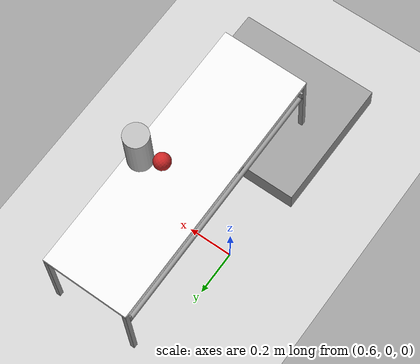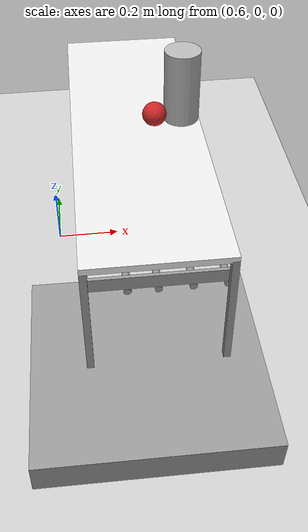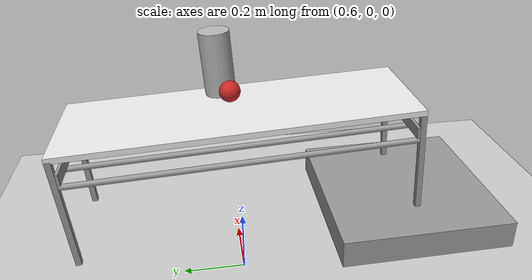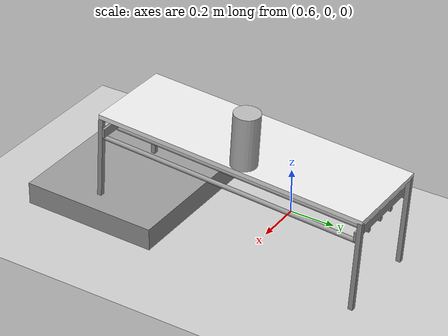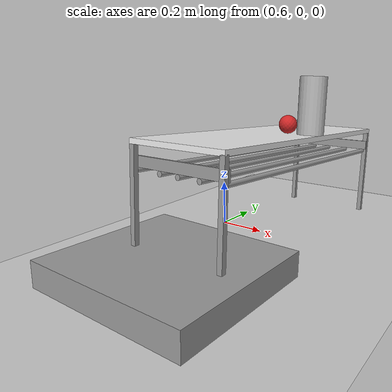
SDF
<sdf version="1.7">
 <world name="default">
  <physics name="default_physics" default="0" type="ode">
   <max_step_size>0.001</max_step_size>
   <real_time_factor>1</real_time_factor>
   <real_time_update_rate>1000</real_time_update_rate>
  </physics>
  <light name="sun" type="directional">
   <pose>0 0 10 0 -0 0</pose>
   <diffuse>0.8 0.8 0.8 1</diffuse>
   <specular>0.2 0.2 0.2 1</specular>
   <attenuation><range>1000</range><constant>1</constant><linear>0</linear><quadratic>0</quadratic></attenuation>
   <direction>-0.5 0.1 -0.9</direction>
   <spot><inner_angle>0</inner_angle><outer_angle>0</outer_angle><falloff>0</falloff></spot>
  </light>
  <model name="ground_plane">
   <static>1</static>
   <link name="link">
    <collision name="collision">
     <geometry><plane><normal>0 0 1</normal><size>100 100</size></plane></geometry>
     <surface>
      <contact><collide_bitmask>65535</collide_bitmask></contact>
      <friction><ode><mu>100</mu><mu2>50</mu2></ode></friction>
     </surface>
    </collision>
    <visual name="visual">
     <cast_shadows>0</cast_shadows>
     <geometry><plane><normal>0 0 1</normal><size>100 100</size></plane></geometry>
     <material>
      <script><uri>file://media/materials/scripts/gazebo.material</uri><name>Gazebo/Grey</name></script>
     </material>
    </visual>
   </link>
  </model>
  <gravity>0 0 -9.8</gravity>
  <magnetic_field>6e-06 2.3e-05 -4.2e-05</magnetic_field>
  <atmosphere type="adiabatic"/>
  <scene><ambient>0.4 0.4 0.4 1</ambient><background>0.7 0.7 0.7 1</background><shadows>1</shadows></scene>
  <spherical_coordinates>
   <surface_model>EARTH_WGS84</surface_model>
   <latitude_deg>0</latitude_deg>
   <longitude_deg>0</longitude_deg>
   <elevation>0</elevation>
   <heading_deg>0</heading_deg>
  </spherical_coordinates>
  <model name="wrc_long_table">
   <static>1</static>
   <link name="link">
    <inertial><mass>1</mass></inertial>
    <collision name="top">
     <pose>0 0 0.39 0 -0 0</pose>
     <geometry><box><size>1.2 0.4 0.02</size></box></geometry>
    </collision>
    <visual name="top_v">
     <pose>0 0 0.39 0 -0 0</pose>
     <geometry><box><size>1.2 0.4 0.02</size></box></geometry>
     <material>
      <script><uri>file://media/materials/scripts/gazebo.material</uri><name>Gazebo/White</name></script>
     </material>
    </visual>
    <collision name="leg1">
     <pose>0.59 0.19 0.185 0 -0 0</pose>
     <geometry><box><size>0.02 0.02 0.4</size></box></geometry>
    </collision>
    <visual name="leg1_v">
     <pose>0.59 0.19 0.185 0 -0 0</pose>
     <geometry><box><size>0.02 0.02 0.4</size></box></geometry>
     <material>
      <script><uri>file://media/materials/scripts/gazebo.material</uri><name>Gazebo/Gray</name></script>
     </material>
    </visual>
    <collision name="leg2">
     <pose>-0.59 0.19 0.185 0 -0 0</pose>
     <geometry><box><size>0.02 0.02 0.4</size></box></geometry>
    </collision>
    <visual name="leg2_v">
     <pose>-0.59 0.19 0.185 0 -0 0</pose>
     <geometry><box><size>0.02 0.02 0.4</size></box></geometry>
     <material>
      <script><uri>file://media/materials/scripts/gazebo.material</uri><name>Gazebo/Gray</name></script>
     </material>
    </visual>
    <collision name="leg3">
     <pose>0.59 -0.19 0.185 0 -0 0</pose>
     <geometry><box><size>0.02 0.02 0.4</size></box></geometry>
    </collision>
    <visual name="leg3_v">
     <pose>0.59 -0.19 0.185 0 -0 0</pose>
     <geometry><box><size>0.02 0.02 0.4</size></box></geometry>
     <material>
      <script><uri>file://media/materials/scripts/gazebo.material</uri><name>Gazebo/Gray</name></script>
     </material>
    </visual>
    <collision name="leg4">
     <pose>-0.59 -0.19 0.185 0 -0 0</pose>
     <geometry><box><size>0.02 0.02 0.4</size></box></geometry>
    </collision>
    <visual name="leg4_v">
     <pose>-0.59 -0.19 0.185 0 -0 0</pose>
     <geometry><box><size>0.02 0.02 0.4</size></box></geometry>
     <material>
      <script><uri>file://media/materials/scripts/gazebo.material</uri><name>Gazebo/Gray</name></script>
     </material>
    </visual>
    <collision name="side_panel1">
     <pose>0.575 0 0.32 0 -0 0</pose>
     <geometry><box><size>0.01 0.4 0.04</size></box></geometry>
    </collision>
    <visual name="side_panel1_v">
     <pose>0.575 0 0.32 0 -0 0</pose>
     <geometry><box><size>0.01 0.4 0.04</size></box></geometry>
     <material>
      <script><uri>file://media/materials/scripts/gazebo.material</uri><name>Gazebo/Gray</name></script>
     </material>
    </visual>
    <collision name="side_panel2">
     <pose>-0.575 0 0.32 0 -0 0</pose>
     <geometry><box><size>0.01 0.4 0.04</size></box></geometry>
    </collision>
    <visual name="side_panel2_v">
     <pose>-0.575 0 0.32 0 -0 0</pose>
     <geometry><box><size>0.01 0.4 0.04</size></box></geometry>
     <material>
      <script><uri>file://media/materials/scripts/gazebo.material</uri><name>Gazebo/Gray</name></script>
     </material>
    </visual>
    <collision name="bar1">
     <pose>0 0.2 0.29 0 1.57 0</pose>
     <geometry><cylinder><radius>0.01</radius><length>1.16</length></cylinder></geometry>
    </collision>
    <visual name="bar1_v">
     <pose>0 0.19 0.29 0 1.57 0</pose>
     <geometry><cylinder><radius>0.01</radius><length>1.16</length></cylinder></geometry>
     <material>
      <script><uri>file://media/materials/scripts/gazebo.material</uri><name>Gazebo/Gray</name></script>
     </material>
    </visual>
    <collision name="bar2">
     <pose>0 0.08 0.29 0 1.57 0</pose>
     <geometry><cylinder><radius>0.01</radius><length>1.16</length></cylinder></geometry>
    </collision>
    <visual name="bar2_v">
     <pose>0 0.08 0.29 0 1.57 0</pose>
     <geometry><cylinder><radius>0.01</radius><length>1.16</length></cylinder></geometry>
     <material>
      <script><uri>file://media/materials/scripts/gazebo.material</uri><name>Gazebo/Gray</name></script>
     </material>
    </visual>
    <collision name="bar3">
     <pose>0 0 0.29 0 1.57 0</pose>
     <geometry><cylinder><radius>0.01</radius><length>1.16</length></cylinder></geometry>
    </collision>
    <visual name="bar3_v">
     <pose>0 0 0.29 0 1.57 0</pose>
     <geometry><cylinder><radius>0.01</radius><length>1.16</length></cylinder></geometry>
     <material>
      <script><uri>file://media/materials/scripts/gazebo.material</uri><name>Gazebo/Gray</name></script>
     </material>
    </visual>
    <collision name="bar4">
     <pose>0 -0.08 0.29 0 1.57 0</pose>
     <geometry><cylinder><radius>0.01</radius><length>1.16</length></cylinder></geometry>
    </collision>
    <visual name="bar4_v">
     <pose>0 -0.09 0.29 0 1.57 0</pose>
     <geometry><cylinder><radius>0.01</radius><length>1.16</length></cylinder></geometry>
     <material>
      <script><uri>file://media/materials/scripts/gazebo.material</uri><name>Gazebo/Gray</name></script>
     </material>
    </visual>
    <collision name="bar5">
     <pose>0 -0.18 0.29 0 1.57 0</pose>
     <geometry><cylinder><radius>0.01</radius><length>1.16</length></cylinder></geometry>
    </collision>
    <visual name="bar5_v">
     <pose>0 -0.18 0.29 0 1.57 0</pose>
     <geometry><cylinder><radius>0.01</radius><length>1.16</length></cylinder></geometry>
     <material>
      <script><uri>file://media/materials/scripts/gazebo.material</uri><name>Gazebo/Gray</name></script>
     </material>
    </visual>
   </link>
   <pose>0.871421 -0.043233 0.060821 0 0.05843 1.56133</pose>
  </model>
  <light name="user_spot_light_0" type="spot">
   <pose>0.988981 0.326539 1 0 -0 0</pose>
   <diffuse>0.9 0.9 0.9 1</diffuse>
   <specular>0.1 0.1 0.1 1</specular>
   <direction>0 0 -1</direction>
   <attenuation>
    <range>200</range>
    <constant>0.2</constant>
    <linear>0.2</linear>
    <quadratic>0.001</quadratic>
   </attenuation>
   <cast_shadows>0</cast_shadows>
   <spot><inner_angle>0.6</inner_angle><outer_angle>1</outer_angle><falloff>1</falloff></spot>
  </light>
  <audio><device>default</device></audio>
  <model name="unit_box">
   <pose>0.834006 -0.6224 0.067078 -0.016745 0.012922 -0.009521</pose>
   <link name="link">
    <inertial>
     <mass>1</mass>
     <inertia>
      <ixx>0.166667</ixx>
      <ixy>0</ixy>
      <ixz>0</ixz>
      <iyy>0.166667</iyy>
      <iyz>0</iyz>
      <izz>0.166667</izz>
     </inertia>
    </inertial>
    <collision name="collision"><geometry><box><size>0.646849 0.602268 0.0975</size></box></geometry></collision>
    <visual name="visual">
     <geometry><box><size>0.646849 0.602268 0.0975</size></box></geometry>
     <material>
      <script><name>Gazebo/Grey</name><uri>file://media/materials/scripts/gazebo.material</uri></script>
     </material>
    </visual>
   </link>
  </model>
  <model name="beer">
   <link name="link">
    <pose>0 0 0.115 0 -0 0</pose>
    <inertial>
     <mass>0.39</mass>
     <inertia><ixx>0.00058</ixx><ixy>0</ixy><ixz>0</ixz><iyy>0.00058</iyy><iyz>0</iyz><izz>0.00019</izz></inertia>
    </inertial>
    <collision name="collision">
     <geometry><cylinder><radius>0.055</radius><length>0.23</length></cylinder></geometry>
    </collision>
    <visual name="visual">
     <geometry><cylinder><radius>0.055</radius><length>0.23</length></cylinder></geometry>
     <material>
      <script>
       <uri>model://beer/materials/scripts</uri>
       <uri>model://beer/materials/textures</uri>
       <name>Beer/Diffuse</name>
      </script>
     </material>
    </visual>
   </link>
   <pose>1.01699 0.026066 0.457371 -0.058406 0.000802 0.004201</pose>
  </model>
  <model name="cricket_ball">
   <link name="link">
    <pose>0 0 0.0375 0 -0 0</pose>
    <inertial>
     <mass>0.1467</mass>
     <inertia>
      <ixx>8.25187e-05</ixx>
      <ixy>0</ixy>
      <ixz>0</ixz>
      <iyy>8.25187e-05</iyy>
      <iyz>0</iyz>
      <izz>8.25187e-05</izz>
     </inertia>
    </inertial>
    <collision name="collision">
     <geometry><sphere><radius>0.0375</radius></sphere></geometry>
     <surface>
      <contact>
       <poissons_ratio>0.347</poissons_ratio>
       <elastic_modulus>8.8e+09</elastic_modulus>
       <ode><kp>100000</kp><kd>100</kd><max_vel>100</max_vel><min_depth>0.001</min_depth></ode>
      </contact>
      <friction>
       <torsional>
        <coefficient>1</coefficient>
        <use_patch_radius>0</use_patch_radius>
        <surface_radius>0.01</surface_radius>
       </torsional>
      </friction>
     </surface>
    </collision>
    <visual name="visual">
     <geometry><sphere><radius>0.0375</radius></sphere></geometry>
     <material>
      <script><uri>file://media/materials/scripts/gazebo.material</uri><name>Gazebo/Red</name></script>
     </material>
    </visual>
    <velocity_decay><linear>0</linear><angular>0.005</angular></velocity_decay>
   </link>
   <pose>0.912146 -0.021982 0.52149 -2.46013 -0.471947 -0.172198</pose>
  </model>
  <light name="user_point_light_0" type="point">
   <pose>-0.3893 0.309075 1 0 -0 0</pose>
   <diffuse>0.5 0.5 0.5 1</diffuse>
   <specular>0.1 0.1 0.1 1</specular>
   <attenuation>
    <range>20</range>
    <constant>0.5</constant>
    <linear>0.01</linear>
    <quadratic>0.001</quadratic>
   </attenuation>
   <cast_shadows>0</cast_shadows>
   <direction>0 0 -1</direction>
   <spot><inner_angle>0</inner_angle><outer_angle>0</outer_angle><falloff>0</falloff></spot>
  </light>
 </world>
</sdf>
